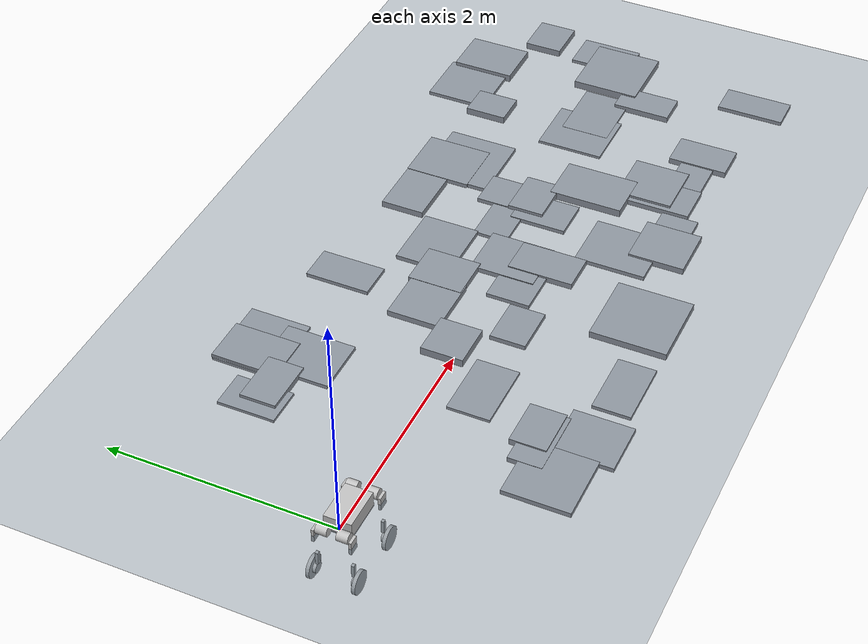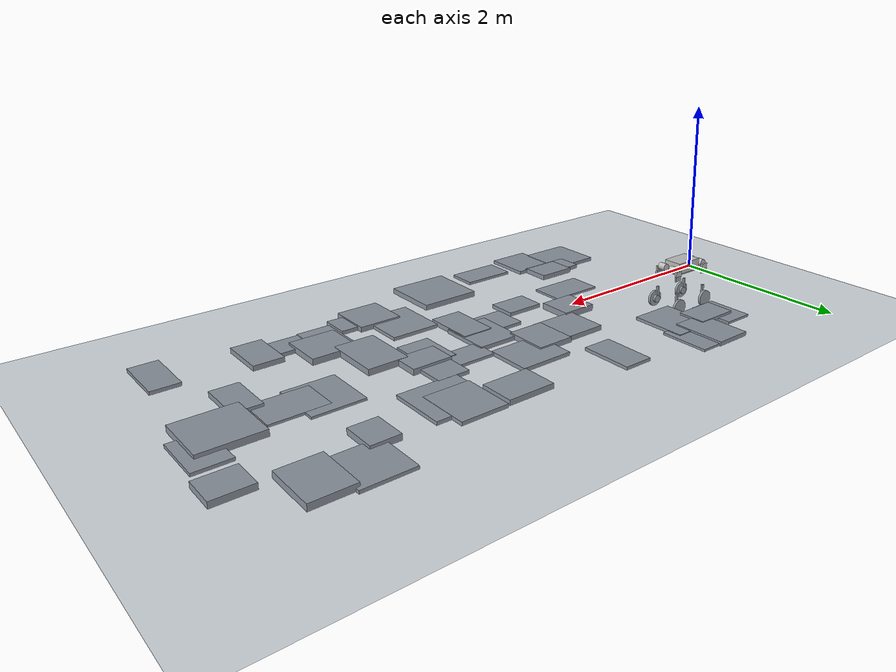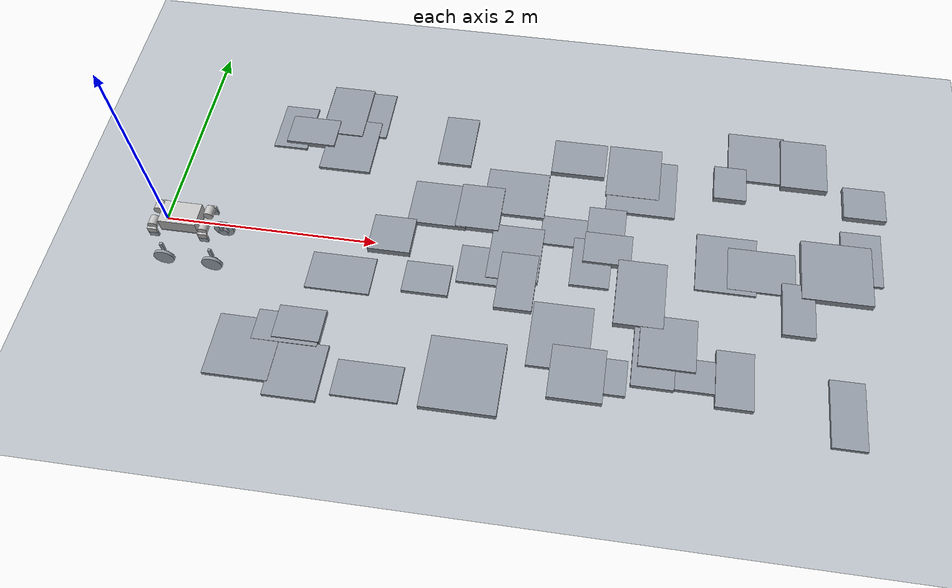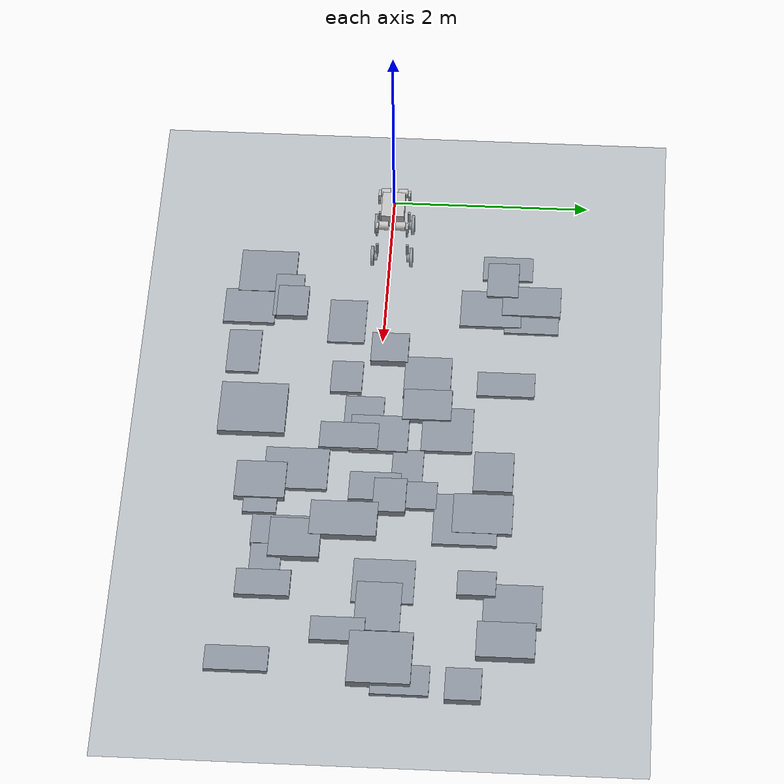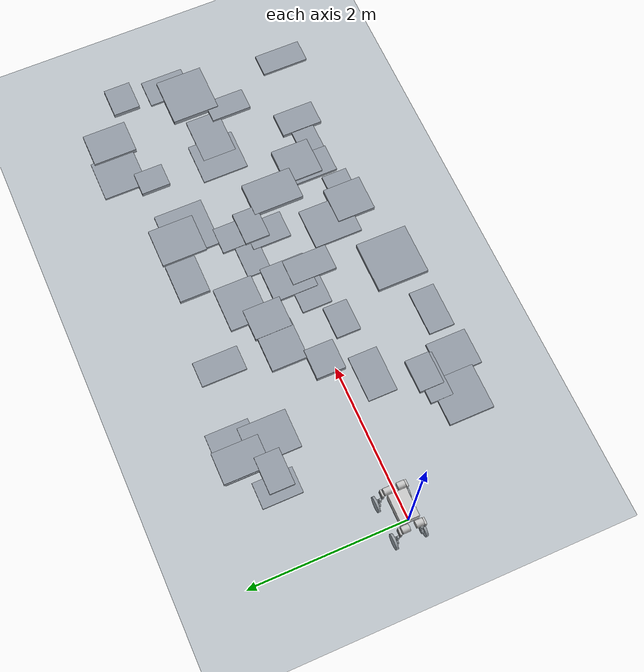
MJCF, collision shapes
<mujoco model="zexw_rough">
  <include file="../model/robot.xml"/>
  <compiler meshdir="../model/assets"/>

  <option timestep="0.002" gravity="0 0 -9.81" integrator="implicitfast"/>

  <visual>
    <headlight diffuse="0.82 0.86 0.9" ambient="0.42 0.48 0.54" specular="0.15 0.15 0.18"/>
    <global azimuth="120" elevation="-20"/>
  </visual>

  <asset>
    <texture type="skybox" builtin="gradient" rgb1="0.3 0.5 0.7" rgb2="0 0 0" width="512" height="3072"/>
    <texture type="2d" name="groundplane" builtin="checker" mark="edge"
      rgb1="0.28 0.38 0.46" rgb2="0.16 0.23 0.30" markrgb="0.56 0.64 0.70" width="300" height="300"/>
    <material name="groundplane" texture="groundplane" texuniform="true" texrepeat="5 5" reflectance="0.2"/>
    <material name="terrain" rgba="0.55 0.58 0.62 1" reflectance="0.05"/>
  </asset>

  <worldbody>
    <light pos="0 0 3" dir="0 0 -1" directional="true"/>
    <geom name="floor" size="0 0 0.05" type="plane" material="groundplane" friction="0.8 0.05 0.01"/>
    <geom type="box" pos="3.7737 1.1924 0.0285" size="0.2575 0.1940 0.0285" material="terrain"/>
    <geom type="box" pos="2.5694 1.2645 0.0172" size="0.1611 0.2867 0.0172" material="terrain"/>
    <geom type="box" pos="0.9329 1.2200 0.0129" size="0.1654 0.2528 0.0129" material="terrain"/>
    <geom type="box" pos="6.4416 0.4242 0.0158" size="0.1836 0.2775 0.0158" material="terrain"/>
    <geom type="box" pos="4.9470 -0.9552 0.0209" size="0.2531 0.1496 0.0209" material="terrain"/>
    <geom type="box" pos="3.9990 0.0407 0.0182" size="0.1804 0.2511 0.0182" material="terrain"/>
    <geom type="box" pos="5.2299 1.0921 0.0320" size="0.1532 0.1860 0.0320" material="terrain"/>
    <geom type="box" pos="1.1038 -1.2160 0.0211" size="0.2886 0.2868 0.0211" material="terrain"/>
    <geom type="box" pos="5.4783 1.4457 0.0167" size="0.2692 0.2808 0.0167" material="terrain"/>
    <geom type="box" pos="6.4886 1.0226 0.0313" size="0.1961 0.1722 0.0313" material="terrain"/>
    <geom type="box" pos="5.5367 0.1645 0.0126" size="0.3061 0.2190 0.0126" material="terrain"/>
    <geom type="box" pos="3.0306 -1.2253 0.0302" size="0.3329 0.3327 0.0302" material="terrain"/>
    <geom type="box" pos="2.5256 0.4819 0.0269" size="0.2736 0.2330 0.0269" material="terrain"/>
    <geom type="box" pos="4.4648 -0.2351 0.0346" size="0.2213 0.3277 0.0346" material="terrain"/>
    <geom type="box" pos="1.5213 1.0710 0.0167" size="0.2489 0.3069 0.0167" material="terrain"/>
    <geom type="box" pos="6.2580 -1.1333 0.0185" size="0.1504 0.3036 0.0185" material="terrain"/>
    <geom type="box" pos="3.8054 -0.7391 0.0189" size="0.2689 0.3121 0.0189" material="terrain"/>
    <geom type="box" pos="4.3988 0.9474 0.0185" size="0.3262 0.3132 0.0185" material="terrain"/>
    <geom type="box" pos="4.7348 -0.6903 0.0340" size="0.2484 0.2483 0.0340" material="terrain"/>
    <geom type="box" pos="2.1440 0.0828 0.0350" size="0.1970 0.1870 0.0350" material="terrain"/>
    <geom type="box" pos="1.4363 -0.9865 0.0223" size="0.2933 0.1449 0.0223" material="terrain"/>
    <geom type="box" pos="3.8374 0.3464 0.0150" size="0.3340 0.1526 0.0150" material="terrain"/>
    <geom type="box" pos="1.5156 1.4842 0.0122" size="0.3241 0.2726 0.0122" material="terrain"/>
    <geom type="box" pos="5.8612 -0.2035 0.0274" size="0.1460 0.2599 0.0274" material="terrain"/>
    <geom type="box" pos="4.1363 0.1944 0.0329" size="0.2195 0.1601 0.0329" material="terrain"/>
    <geom type="box" pos="4.0962 -1.0619 0.0209" size="0.3112 0.1644 0.0209" material="terrain"/>
    <geom type="box" pos="3.3009 0.0454 0.0219" size="0.2377 0.2872 0.0219" material="terrain"/>
    <geom type="box" pos="1.7604 -0.3701 0.0127" size="0.2961 0.1864 0.0127" material="terrain"/>
    <geom type="box" pos="4.1013 0.4128 0.0189" size="0.1757 0.2402 0.0189" material="terrain"/>
    <geom type="box" pos="1.1237 1.1773 0.0277" size="0.2376 0.1582 0.0277" material="terrain"/>
    <geom type="box" pos="1.4054 1.4772 0.0231" size="0.2030 0.2948 0.0231" material="terrain"/>
    <geom type="box" pos="5.2169 0.1976 0.0125" size="0.2749 0.2981 0.0125" material="terrain"/>
    <geom type="box" pos="3.9845 -1.0778 0.0281" size="0.2364 0.2470 0.0281" material="terrain"/>
    <geom type="box" pos="4.3121 1.1101 0.0195" size="0.2544 0.2918 0.0195" material="terrain"/>
    <geom type="box" pos="2.9042 0.4985 0.0285" size="0.2043 0.2406 0.0285" material="terrain"/>
    <geom type="box" pos="1.6044 -1.3661 0.0193" size="0.2327 0.2582 0.0193" material="terrain"/>
    <geom type="box" pos="2.5477 -0.3247 0.0209" size="0.2109 0.1569 0.0209" material="terrain"/>
    <geom type="box" pos="3.2190 0.7127 0.0203" size="0.2921 0.2513 0.0203" material="terrain"/>
    <geom type="box" pos="6.2048 0.2213 0.0345" size="0.3187 0.3045 0.0345" material="terrain"/>
    <geom type="box" pos="3.0737 -0.1217 0.0175" size="0.2684 0.1931 0.0175" material="terrain"/>
    <geom type="box" pos="3.3521 -0.2519 0.0266" size="0.1711 0.2893 0.0266" material="terrain"/>
    <geom type="box" pos="4.6251 -0.7818 0.0231" size="0.1849 0.3370 0.0231" material="terrain"/>
    <geom type="box" pos="1.5283 -0.9379 0.0286" size="0.2118 0.1567 0.0286" material="terrain"/>
    <geom type="box" pos="2.2327 -1.3797 0.0159" size="0.2900 0.1646 0.0159" material="terrain"/>
    <geom type="box" pos="5.3142 -0.9545 0.0272" size="0.1632 0.2638 0.0272" material="terrain"/>
    <geom type="box" pos="5.9283 1.4009 0.0342" size="0.2199 0.2808 0.0342" material="terrain"/>
  </worldbody>
</mujoco>

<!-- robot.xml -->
<mujoco model="wheelleg">
  <compiler angle="radian" meshdir="assets/"/>

  <default>
    <geom margin="0"/>
  </default>
  <asset>
    <mesh name="base_link" content_type="model/stl" file="base_link.STL"/>
    <mesh name="fl_hip_abduction_Link" content_type="model/stl" file="fl_hip_abduction_Link.STL"/>
    <mesh name="fl_hip_pitch_Link" content_type="model/stl" file="fl_hip_pitch_Link.STL"/>
    <mesh name="fl_knee_Link" content_type="model/stl" file="fl_knee_Link.STL"/>
    <mesh name="fl_wheel_Link" content_type="model/stl" file="fl_wheel_Link.STL"/>
    <mesh name="fr_hip_abduction_Link" content_type="model/stl" file="fr_hip_abduction_Link.STL"/>
    <mesh name="fr_hip_pitch_Link" content_type="model/stl" file="fr_hip_pitch_Link.STL"/>
    <mesh name="fr_knee_Link" content_type="model/stl" file="fr_knee_Link.STL"/>
    <mesh name="fr_wheel_Link" content_type="model/stl" file="fr_wheel_Link.STL"/>
    <mesh name="rl_hip_abduction_Link" content_type="model/stl" file="rl_hip_abduction_Link.STL"/>
    <mesh name="rl_hip_pitch_Link" content_type="model/stl" file="rl_hip_pitch_Link.STL"/>
    <mesh name="rl_knee_Link" content_type="model/stl" file="rl_knee_Link.STL"/>
    <mesh name="rl_wheel_Link" content_type="model/stl" file="rl_wheel_Link.STL"/>
    <mesh name="rr_hip_abduction_Link" content_type="model/stl" file="rr_hip_abduction_Link.STL"/>
    <mesh name="rr_hip_pitch_Link" content_type="model/stl" file="rr_hip_pitch_Link.STL"/>
    <mesh name="rr_knee_Link" content_type="model/stl" file="rr_knee_Link.STL"/>
    <mesh name="rr_wheel_Link" content_type="model/stl" file="rr_wheel_Link.STL"/>
  </asset>

  <worldbody>
    <body name="base_link">
      <inertial pos="0.1517 0.0002 0.0542" mass="6.5377" fullinertia="0.0402 0.1689 0.1840 -0.0001 0.0000 0.0000"/>
      <joint type="free"/>
      <geom type="mesh" contype="0" conaffinity="0" group="1" density="0" rgba="0.75294 0.75294 0.75294 1" mesh="base_link"/>
      <geom size="0.178 0.1175 0.073" pos="0.1518 0 0.054" type="box" rgba="0.75294 0.75294 0.75294 1"/>
      <body name="fl_hip_abduction_Link" pos="0.32826 0.066172 0.053981">
        <inertial pos="0.0488 -0.0026 0.0007" mass="0.63" fullinertia="0.0004 0.0007 0.0006 0.0000 0.0000 0.0000"/>
        <joint name="fl_hip_abduction_joint" pos="0 0 0" axis="1 0 0" range="-0.436 0.611" actuatorfrcrange="-17 17" damping="0.01" frictionloss="0.01" armature="0.0042"/>
        <geom type="mesh" contype="0" conaffinity="0" group="1" density="0" rgba="0.75294 0.75294 0.75294 1" mesh="fl_hip_abduction_Link"/>
        <body name="fl_hip_pitch_Link" pos="0.06389 -0.027344 0.00010727" quat="0.999997 -0.0025023 0 0">
          <inertial pos="0.0019 0.1119 -0.0480" mass="0.998" fullinertia="0.0066 0.0068 0.0011 0.0000 0.0000 0.0004"/>
          <joint name="fl_hip_pitch_joint" pos="0 0 0" axis="0 1 0" range="-2.58 2.58" actuatorfrcrange="-17 17" damping="0.01" frictionloss="0.01" armature="0.0042"/>
          <geom type="mesh" contype="0" conaffinity="0" group="1" density="0" rgba="0.75294 0.75294 0.75294 1" mesh="fl_hip_pitch_Link"/>
          <geom size="0.046 0.048" pos="0 0.048 0" quat="0.707105 0.707108 0 0" type="cylinder" rgba="0.75294 0.75294 0.75294 1"/>
          <geom size="0.0435 0.0115 0.06" pos="0 0.1155 -0.06" type="box" rgba="0.75294 0.75294 0.75294 1"/>
          <body name="fl_knee_Link" pos="0 0.1035 -0.25" quat="0.999997 0.0025023 0 0">
            <inertial pos="0.0002 0.0242 -0.1539" mass="0.6965" fullinertia="0.0045 0.0048 0.0006 0.0000 0.0000 0.0002"/>
            <joint name="fl_knee_joint" pos="0 0 0" axis="0 1 0" range="-2.65 2.65" actuatorfrcrange="-17 17" damping="0.01" frictionloss="0.01" armature="0.0042"/>
            <geom type="mesh" contype="0" conaffinity="0" group="1" density="0" rgba="0.75294 0.75294 0.75294 1" mesh="fl_knee_Link"/>
            <geom size="0.0475 0.015" pos="0 0.025 -0.20011" quat="0.707105 0.707108 0 0" type="cylinder" rgba="0.75294 0.75294 0.75294 1"/>
            <geom size="0.015 0.0125 0.06" pos="0 0.0125 -0.09" type="box" rgba="0.75294 0.75294 0.75294 1"/>
            <body name="fl_wheel_Link" pos="0 0.014699 -0.20011">
              <inertial pos="-0.0002 0.0407 -0.0001" mass="0.5505" fullinertia="0.0017 0.0034 0.0017 0.0000 0.0000 0.0000"/>
              <joint name="fl_wheel_joint" pos="0 0 0" axis="0 1 0" actuatorfrcrange="-17 17" damping="0.01" frictionloss="0.01" armature="0.0042"/>
              <geom type="mesh" contype="0" conaffinity="0" group="1" density="0" rgba="0.75294 0.75294 0.75294 1" mesh="fl_wheel_Link"/>
              <geom size="0.1 0.015" pos="0 0.04074 0" quat="0.707105 0.707108 0 0" type="cylinder" rgba="0.75294 0.75294 0.75294 1"/>
            </body>
          </body>
        </body>
      </body>
      <body name="fr_hip_abduction_Link" pos="0.32826 -0.065853 0.054034">
        <inertial pos="0.0488 0.0026 0.0008" mass="0.63" fullinertia="0.0004 0.0007 0.0006 0.0000 0.0000 0.0000"/>
        <joint name="fr_hip_abduction_joint" pos="0 0 0" axis="1 0 0" range="-0.611 0.436" actuatorfrcrange="-17 17" damping="0.01" frictionloss="0.01" armature="0.0042"/>
        <geom type="mesh" contype="0" conaffinity="0" group="1" density="0" rgba="0.75294 0.75294 0.75294 1" mesh="fr_hip_abduction_Link"/>
        <body name="fr_hip_pitch_Link" pos="0.06389 0.027311 -0.00036027" quat="0.999976 -0.00686995 0 0">
          <inertial pos="-0.0019 -0.1119 -0.048" mass="0.998" fullinertia="0.0066 0.0068 0.0011 0.0000 0.0000 0.0004"/>
          <joint name="fr_hip_pitch_joint" pos="0 0 0" axis="0 1 0" range="-2.58 2.58" actuatorfrcrange="-17 17" damping="0.01" frictionloss="0.01" armature="0.0042"/>
          <geom type="mesh" contype="0" conaffinity="0" group="1" density="0" rgba="0.75294 0.75294 0.75294 1" mesh="fr_hip_pitch_Link"/>
          <geom size="0.046 0.048" pos="0 -0.048 0" quat="0.707105 0.707108 0 0" type="cylinder" rgba="0.75294 0.75294 0.75294 1"/>
          <geom size="0.0435 0.0115 0.06" pos="0 -0.1155 -0.06" type="box" rgba="0.75294 0.75294 0.75294 1"/>
          <body name="fr_knee_Link" pos="-0.00075079 -0.1035 -0.25" quat="0.999976 0.00686995 0 0">
            <inertial pos="-0.0002 -0.0242 -0.1539" mass="0.6965" fullinertia="0.0045 0.0048 0.0006 0.0000 0.0000 0.0002"/>
            <joint name="fr_knee_joint" pos="0 0 0" axis="0 1 0" range="-2.65 2.65" actuatorfrcrange="-17 17" damping="0.01" frictionloss="0.01" armature="0.0042"/>
            <geom type="mesh" contype="0" conaffinity="0" group="1" density="0" rgba="0.75294 0.75294 0.75294 1" mesh="fr_knee_Link"/>
            <geom size="0.0475 0.015" pos="0 -0.025 -0.1998" quat="0.707105 0.707108 0 0" type="cylinder" rgba="0.75294 0.75294 0.75294 1"/>
            <geom size="0.015 0.0125 0.06" pos="0 -0.0125 -0.09" type="box" rgba="0.75294 0.75294 0.75294 1"/>
            <body name="fr_wheel_Link" pos="0 -0.018447 -0.1998">
              <inertial pos="0.0002 -0.0407 -0.0001" mass="0.5505" fullinertia="0.0017 0.0034 0.0017 0.0000 0.0000 0.0000"/>
              <joint name="fr_wheel_joint" pos="0 0 0" axis="0 1 0" actuatorfrcrange="-17 17" damping="0.01" frictionloss="0.01" armature="0.0042"/>
              <geom type="mesh" contype="0" conaffinity="0" group="1" density="0" rgba="0.75294 0.75294 0.75294 1" mesh="fr_wheel_Link"/>
              <geom size="0.1 0.015" pos="0 -0.040735 0" quat="0.707105 0.707108 0 0" type="cylinder" rgba="0.75294 0.75294 0.75294 1"/>
            </body>
          </body>
        </body>
      </body>
      <body name="rl_hip_abduction_Link" pos="-0.024743 0.066141 0.054034">
        <inertial pos="-0.0488 -0.0026 -0.0007" mass="0.63" fullinertia="0.0004 0.0007 0.0006 0.0000 0.0000 0.0000"/>
        <joint name="rl_hip_abduction_joint" pos="0 0 0" axis="1 0 0" range="-0.436 0.611" actuatorfrcrange="-17 17" damping="0.01" frictionloss="0.01" armature="0.0042"/>
        <geom type="mesh" contype="0" conaffinity="0" group="1" density="0" rgba="0.75294 0.75294 0.75294 1" mesh="rl_hip_abduction_Link"/>
        <body name="rl_hip_pitch_Link" pos="-0.06389 -0.027309 0.00045509">
          <inertial pos="0.0019 0.1119 -0.048" mass="0.998" fullinertia="0.0066 0.0068 0.0011 0.0000 -0.0001 -0.0005"/>
          <joint name="rl_hip_pitch_joint" pos="0 0 0" axis="0 1 0" range="-2.58 2.58" actuatorfrcrange="-17 17" damping="0.01" frictionloss="0.01" armature="0.0042"/>
          <geom type="mesh" contype="0" conaffinity="0" group="1" density="0" rgba="0.75294 0.75294 0.75294 1" mesh="rl_hip_pitch_Link"/>
          <geom size="0.046 0.048" pos="0 0.048 0" quat="0.707105 0.707108 0 0" type="cylinder" rgba="0.75294 0.75294 0.75294 1"/>
          <geom size="0.0435 0.0115 0.06" pos="0 0.1155 -0.06" type="box" rgba="0.75294 0.75294 0.75294 1"/>
          <body name="rl_knee_Link" pos="0 0.099459 -0.25163">
            <inertial pos="0.0002 0.0242 -0.1539" mass="0.6965" fullinertia="0.0045 0.0048 0.0006 0.0000 0.0000 -0.0003"/>
            <joint name="rl_knee_joint" pos="0 0 0" axis="0 1 0" range="-2.65 2.65" actuatorfrcrange="-17 17" damping="0.01" frictionloss="0.01" armature="0.0042"/>
            <geom type="mesh" contype="0" conaffinity="0" group="1" density="0" rgba="0.75294 0.75294 0.75294 1" mesh="rl_knee_Link"/>
            <geom size="0.0475 0.015" pos="0 0.025 -0.20027" quat="0.707105 0.707108 0 0" type="cylinder" rgba="0.75294 0.75294 0.75294 1"/>
            <geom size="0.015 0.0125 0.06" pos="0 0.0125 -0.09" type="box" rgba="0.75294 0.75294 0.75294 1"/>
            <body name="rl_wheel_Link" pos="0 0.012475 -0.20027">
              <inertial pos="-0.0002 0.0407 -0.0001" mass="0.5505" fullinertia="0.0017 0.0034 0.0017 0.0000 0.0000 0.0000"/>
              <joint name="rl_wheel_joint" pos="0 0 0" axis="0 1 0" actuatorfrcrange="-17 17" damping="0.01" frictionloss="0.01" armature="0.0042"/>
              <geom type="mesh" contype="0" conaffinity="0" group="1" density="0" rgba="0.75294 0.75294 0.75294 1" mesh="rl_wheel_Link"/>
              <geom size="0.1 0.015" pos="0 0.040737 0" quat="0.707105 0.707108 0 0" type="cylinder" rgba="0.75294 0.75294 0.75294 1"/>
            </body>
          </body>
        </body>
      </body>
      <body name="rr_hip_abduction_Link" pos="-0.024743 -0.065884 0.053981">
        <inertial pos="-0.0488 0.0026 0.0008" mass="0.63" fullinertia="0.0004 0.0007 0.0006 0.0000 0.0000 0.0000"/>
        <joint name="rr_hip_abduction_joint" pos="0 0 0" axis="1 0 0" range="-0.611 0.436" actuatorfrcrange="-17 17" damping="0.01" frictionloss="0.01" armature="0.0042"/>
        <geom type="mesh" contype="0" conaffinity="0" group="1" density="0" rgba="0.75294 0.75294 0.75294 1" mesh="rr_hip_abduction_Link"/>
        <body name="rr_hip_pitch_Link" pos="-0.06389 0.027341 0.00041625">
          <inertial pos="-0.0020 -0.1111 -0.0498" mass="0.998" fullinertia="0.0066 0.0068 0.0011 0.0000 -0.0001 -0.0003"/>
          <joint name="rr_hip_pitch_joint" pos="0 0 0" axis="0 1 0" range="-2.58 2.58" actuatorfrcrange="-17 17" damping="0.01" frictionloss="0.01" armature="0.0042"/>
          <geom type="mesh" contype="0" conaffinity="0" group="1" density="0" rgba="0.75294 0.75294 0.75294 1" mesh="rr_hip_pitch_Link"/>
          <geom size="0.046 0.048" pos="0 -0.048 0" quat="0.707105 0.707108 0 0" type="cylinder" rgba="0.75294 0.75294 0.75294 1"/>
          <geom size="0.0435 0.0115 0.06" pos="0 -0.1155 -0.06" type="box" rgba="0.75294 0.75294 0.75294 1"/>
          <body name="rr_knee_Link" pos="-0.00075079 -0.099408 -0.25165">
            <inertial pos="-0.0002 -0.0225 -0.1541" mass="0.6965" fullinertia="0.0045 0.0048 0.0006 0.0000 0.0000 -0.0002"/>
            <joint name="rr_knee_joint" pos="0 0 0" axis="0 1 0" range="-2.65 2.65" actuatorfrcrange="-17 17" damping="0.01" frictionloss="0.01" armature="0.0042"/>
            <geom type="mesh" contype="0" conaffinity="0" group="1" density="0" rgba="0.75294 0.75294 0.75294 1" mesh="rr_knee_Link"/>
            <geom size="0.0475 0.015" pos="0 -0.025 -0.20027" quat="0.707105 0.707108 0 0" type="cylinder" rgba="0.75294 0.75294 0.75294 1"/>
            <geom size="0.015 0.0125 0.06" pos="0 -0.0125 -0.09" type="box" rgba="0.75294 0.75294 0.75294 1"/>
            <body name="rr_wheel_Link" pos="0 -0.012435 -0.20027">
              <inertial pos="0.0002 -0.0407 -0.0005" mass="0.5505" fullinertia="0.0017 0.0034 0.0017 0.0000 0.0000 0.0000"/>
              <joint name="rr_wheel_joint" pos="0 0 0" axis="0 1 0" actuatorfrcrange="-17 17" damping="0.01" frictionloss="0.01" armature="0.0042"/>
              <geom type="mesh" contype="0" conaffinity="0" group="1" density="0" rgba="0.75294 0.75294 0.75294 1" mesh="rr_wheel_Link"/>
              <geom size="0.1 0.015" pos="0 -0.040737 0" quat="0.707105 0.707108 0 0" type="cylinder" rgba="0.75294 0.75294 0.75294 1"/>
            </body>
          </body>
        </body>
      </body>
      <body name="imu_link" pos="0.1518 0 0.127">
        <inertial pos="0 0 0" mass="0" diaginertia="0 0 0"/>
      </body>
    </body>
  </worldbody>

  <actuator>
    <general name="fl_hip_abduction_joint" joint="fl_hip_abduction_joint" forcerange="-17 17" gainprm="50" biasprm="0 -50 -1.5"/>
    <general name="fl_hip_pitch_joint" joint="fl_hip_pitch_joint" forcerange="-17 17" gainprm="50" biasprm="0 -50 -1.5"/>
    <general name="fl_knee_joint" joint="fl_knee_joint" forcerange="-17 17" gainprm="50" biasprm="0 -50 -1.5"/>
    <general name="fl_wheel_joint" joint="fl_wheel_joint" forcerange="-17 17" gainprm="1" biasprm="0 0 -1"/>
    <general name="fr_hip_abduction_joint" joint="fr_hip_abduction_joint" forcerange="-17 17" gainprm="50" biasprm="0 -50 -1.5"/>
    <general name="fr_hip_pitch_joint" joint="fr_hip_pitch_joint" forcerange="-17 17" gainprm="50" biasprm="0 -50 -1.5"/>
    <general name="fr_knee_joint" joint="fr_knee_joint" forcerange="-17 17" gainprm="50" biasprm="0 -50 -1.5"/>
    <general name="fr_wheel_joint" joint="fr_wheel_joint" forcerange="-17 17" gainprm="1" biasprm="0 0 -1"/>
    <general name="rl_hip_abduction_joint" joint="rl_hip_abduction_joint" forcerange="-17 17" gainprm="50" biasprm="0 -50 -1.5"/>
    <general name="rl_hip_pitch_joint" joint="rl_hip_pitch_joint" forcerange="-17 17" gainprm="50" biasprm="0 -50 -1.5"/>
    <general name="rl_knee_joint" joint="rl_knee_joint" forcerange="-17 17" gainprm="50" biasprm="0 -50 -1.5"/>
    <general name="rl_wheel_joint" joint="rl_wheel_joint" forcerange="-17 17" gainprm="1" biasprm="0 0 -1"/>
    <general name="rr_hip_abduction_joint" joint="rr_hip_abduction_joint" forcerange="-17 17" gainprm="50" biasprm="0 -50 -1.5"/>
    <general name="rr_hip_pitch_joint" joint="rr_hip_pitch_joint" forcerange="-17 17" gainprm="50" biasprm="0 -50 -1.5"/>
    <general name="rr_knee_joint" joint="rr_knee_joint" forcerange="-17 17" gainprm="50" biasprm="0 -50 -1.5"/>
    <general name="rr_wheel_joint" joint="rr_wheel_joint" forcerange="-17 17" gainprm="1" biasprm="0 0 -1"/>
  </actuator>
</mujoco>
